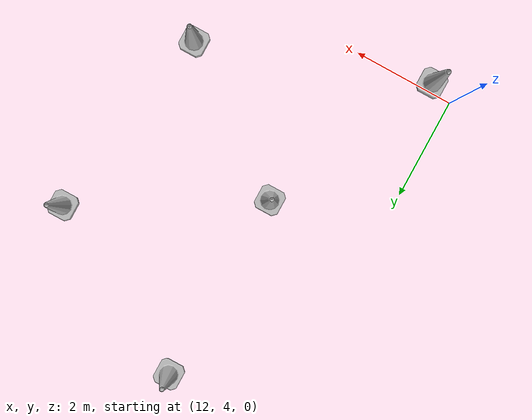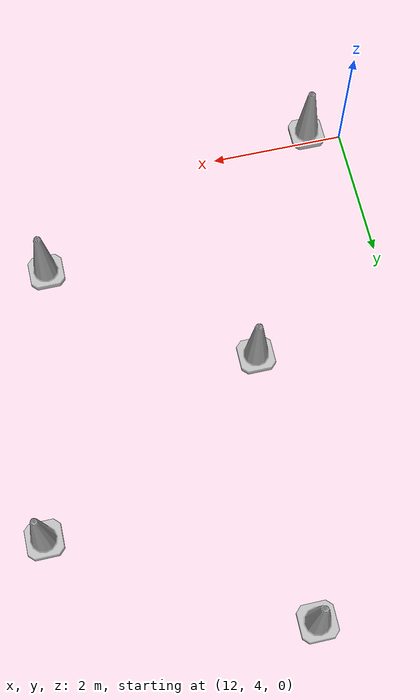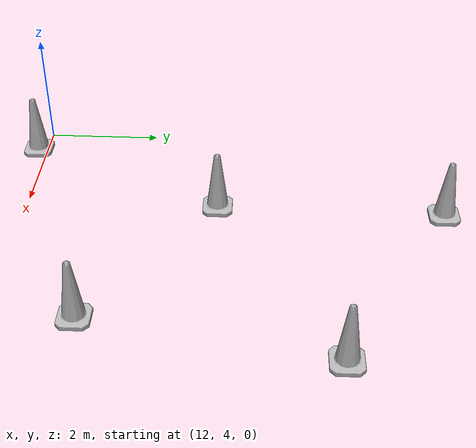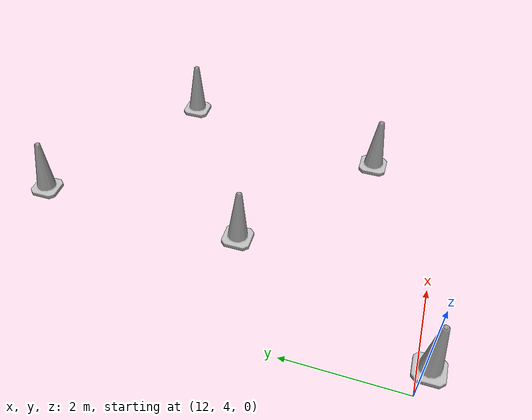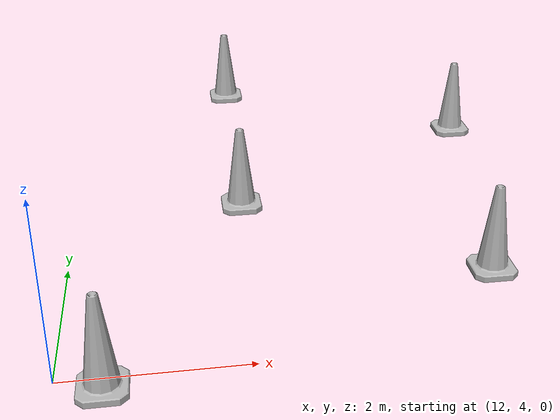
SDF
<sdf version="1.6">
 <model name="RaceTrack1">
  <link name="link_clone_20">
   <inertial>
    <inertia><ixx>1</ixx><ixy>0</ixy><ixz>0</ixz><iyy>1</iyy><iyz>0</iyz><izz>1</izz></inertia>
    <mass>1</mass>
   </inertial>
   <pose>14.2254 11.1301 -6e-06 0 1e-06 0</pose>
   <visual name="visual">
    <geometry>
     <mesh><scale>10 10 10</scale><uri>model://construction_cone/meshes/construction_cone.dae</uri></mesh>
    </geometry>
    <material><shader type="vertex"><normal_map>__default__</normal_map></shader></material>
   </visual>
   <collision name="collision">
    <geometry>
     <mesh><uri>model://construction_cone/meshes/construction_cone.dae</uri><scale>10 10 10</scale></mesh>
    </geometry>
    <surface>
     <friction>
      <ode><mu>1</mu><mu2>1</mu2><fdir1>0 0 0</fdir1><slip1>0</slip1><slip2>0</slip2></ode>
      <torsional>
       <coefficient>1</coefficient>
       <patch_radius>0</patch_radius>
       <surface_radius>0</surface_radius>
       <use_patch_radius>1</use_patch_radius>
       <ode><slip>0</slip></ode>
      </torsional>
     </friction>
     <bounce><restitution_coefficient>0</restitution_coefficient><threshold>1e+06</threshold></bounce>
     <contact>
      <collide_without_contact>0</collide_without_contact>
      <collide_without_contact_bitmask>1</collide_without_contact_bitmask>
      <collide_bitmask>1</collide_bitmask>
      <ode>
       <soft_cfm>0</soft_cfm>
       <soft_erp>0.2</soft_erp>
       <kp>1e+13</kp>
       <kd>1</kd>
       <max_vel>0.01</max_vel>
       <min_depth>0</min_depth>
      </ode>
      <bullet>
       <split_impulse>1</split_impulse>
       <split_impulse_penetration_threshold>-0.01</split_impulse_penetration_threshold>
       <soft_cfm>0</soft_cfm>
       <soft_erp>0.2</soft_erp>
       <kp>1e+13</kp>
       <kd>1</kd>
      </bullet>
     </contact>
    </surface>
   </collision>
  </link>
  <link name="link_clone_22">
   <inertial>
    <inertia><ixx>1</ixx><ixy>0</ixy><ixz>0</ixz><iyy>1</iyy><iyz>0</iyz><izz>1</izz></inertia>
    <mass>1</mass>
   </inertial>
   <pose>14.1306 7.28756 -7e-06 0 1e-06 0</pose>
   <visual name="visual">
    <geometry>
     <mesh><scale>10 10 10</scale><uri>model://construction_cone/meshes/construction_cone.dae</uri></mesh>
    </geometry>
    <material><shader type="vertex"><normal_map>__default__</normal_map></shader></material>
   </visual>
   <collision name="collision">
    <geometry>
     <mesh><uri>model://construction_cone/meshes/construction_cone.dae</uri><scale>10 10 10</scale></mesh>
    </geometry>
    <surface>
     <friction>
      <ode><mu>1</mu><mu2>1</mu2><fdir1>0 0 0</fdir1><slip1>0</slip1><slip2>0</slip2></ode>
      <torsional>
       <coefficient>1</coefficient>
       <patch_radius>0</patch_radius>
       <surface_radius>0</surface_radius>
       <use_patch_radius>1</use_patch_radius>
       <ode><slip>0</slip></ode>
      </torsional>
     </friction>
     <bounce><restitution_coefficient>0</restitution_coefficient><threshold>1e+06</threshold></bounce>
     <contact>
      <collide_without_contact>0</collide_without_contact>
      <collide_without_contact_bitmask>1</collide_without_contact_bitmask>
      <collide_bitmask>1</collide_bitmask>
      <ode>
       <soft_cfm>0</soft_cfm>
       <soft_erp>0.2</soft_erp>
       <kp>1e+13</kp>
       <kd>1</kd>
       <max_vel>0.01</max_vel>
       <min_depth>0</min_depth>
      </ode>
      <bullet>
       <split_impulse>1</split_impulse>
       <split_impulse_penetration_threshold>-0.01</split_impulse_penetration_threshold>
       <soft_cfm>0</soft_cfm>
       <soft_erp>0.2</soft_erp>
       <kp>1e+13</kp>
       <kd>1</kd>
      </bullet>
     </contact>
    </surface>
   </collision>
  </link>
  <link name="link_clone_23">
   <inertial>
    <inertia><ixx>1</ixx><ixy>0</ixy><ixz>0</ixz><iyy>1</iyy><iyz>0</iyz><izz>1</izz></inertia>
    <mass>1</mass>
   </inertial>
   <pose>17.5518 9.26991 -8e-06 0 1e-06 0</pose>
   <visual name="visual">
    <geometry>
     <mesh><scale>10 10 10</scale><uri>model://construction_cone/meshes/construction_cone.dae</uri></mesh>
    </geometry>
    <material><shader type="vertex"><normal_map>__default__</normal_map></shader></material>
   </visual>
   <collision name="collision">
    <geometry>
     <mesh><uri>model://construction_cone/meshes/construction_cone.dae</uri><scale>10 10 10</scale></mesh>
    </geometry>
    <surface>
     <friction>
      <ode><mu>1</mu><mu2>1</mu2><fdir1>0 0 0</fdir1><slip1>0</slip1><slip2>0</slip2></ode>
      <torsional>
       <coefficient>1</coefficient>
       <patch_radius>0</patch_radius>
       <surface_radius>0</surface_radius>
       <use_patch_radius>1</use_patch_radius>
       <ode><slip>0</slip></ode>
      </torsional>
     </friction>
     <bounce><restitution_coefficient>0</restitution_coefficient><threshold>1e+06</threshold></bounce>
     <contact>
      <collide_without_contact>0</collide_without_contact>
      <collide_without_contact_bitmask>1</collide_without_contact_bitmask>
      <collide_bitmask>1</collide_bitmask>
      <ode>
       <soft_cfm>0</soft_cfm>
       <soft_erp>0.2</soft_erp>
       <kp>1e+13</kp>
       <kd>1</kd>
       <max_vel>0.01</max_vel>
       <min_depth>0</min_depth>
      </ode>
      <bullet>
       <split_impulse>1</split_impulse>
       <split_impulse_penetration_threshold>-0.01</split_impulse_penetration_threshold>
       <soft_cfm>0</soft_cfm>
       <soft_erp>0.2</soft_erp>
       <kp>1e+13</kp>
       <kd>1</kd>
      </bullet>
     </contact>
    </surface>
   </collision>
  </link>
  <link name="link_clone_24">
   <inertial>
    <inertia><ixx>1</ixx><ixy>0</ixy><ixz>0</ixz><iyy>1</iyy><iyz>0</iyz><izz>1</izz></inertia>
    <mass>1</mass>
   </inertial>
   <pose>16.854 5.31983 -9e-06 0 1e-06 0</pose>
   <visual name="visual">
    <geometry>
     <mesh><scale>10 10 10</scale><uri>model://construction_cone/meshes/construction_cone.dae</uri></mesh>
    </geometry>
    <material><shader type="vertex"><normal_map>__default__</normal_map></shader></material>
   </visual>
   <collision name="collision">
    <geometry>
     <mesh><uri>model://construction_cone/meshes/construction_cone.dae</uri><scale>10 10 10</scale></mesh>
    </geometry>
    <surface>
     <friction>
      <ode><mu>1</mu><mu2>1</mu2><fdir1>0 0 0</fdir1><slip1>0</slip1><slip2>0</slip2></ode>
      <torsional>
       <coefficient>1</coefficient>
       <patch_radius>0</patch_radius>
       <surface_radius>0</surface_radius>
       <use_patch_radius>1</use_patch_radius>
       <ode><slip>0</slip></ode>
      </torsional>
     </friction>
     <bounce><restitution_coefficient>0</restitution_coefficient><threshold>1e+06</threshold></bounce>
     <contact>
      <collide_without_contact>0</collide_without_contact>
      <collide_without_contact_bitmask>1</collide_without_contact_bitmask>
      <collide_bitmask>1</collide_bitmask>
      <ode>
       <soft_cfm>0</soft_cfm>
       <soft_erp>0.2</soft_erp>
       <kp>1e+13</kp>
       <kd>1</kd>
       <max_vel>0.01</max_vel>
       <min_depth>0</min_depth>
      </ode>
      <bullet>
       <split_impulse>1</split_impulse>
       <split_impulse_penetration_threshold>-0.01</split_impulse_penetration_threshold>
       <soft_cfm>0</soft_cfm>
       <soft_erp>0.2</soft_erp>
       <kp>1e+13</kp>
       <kd>1</kd>
      </bullet>
     </contact>
    </surface>
   </collision>
  </link>
  <link name="link_clone_25">
   <inertial>
    <inertia><ixx>1</ixx><ixy>0</ixy><ixz>0</ixz><iyy>1</iyy><iyz>0</iyz><izz>1</izz></inertia>
    <mass>1</mass>
   </inertial>
   <pose>12.4862 3.83398 -6e-06 0 1e-06 0</pose>
   <visual name="visual">
    <geometry>
     <mesh><scale>10 10 10</scale><uri>model://construction_cone/meshes/construction_cone.dae</uri></mesh>
    </geometry>
    <material><shader type="vertex"><normal_map>__default__</normal_map></shader></material>
   </visual>
   <collision name="collision">
    <geometry>
     <mesh><uri>model://construction_cone/meshes/construction_cone.dae</uri><scale>10 10 10</scale></mesh>
    </geometry>
    <surface>
     <friction>
      <ode><mu>1</mu><mu2>1</mu2><fdir1>0 0 0</fdir1><slip1>0</slip1><slip2>0</slip2></ode>
      <torsional>
       <coefficient>1</coefficient>
       <patch_radius>0</patch_radius>
       <surface_radius>0</surface_radius>
       <use_patch_radius>1</use_patch_radius>
       <ode><slip>0</slip></ode>
      </torsional>
     </friction>
     <bounce><restitution_coefficient>0</restitution_coefficient><threshold>1e+06</threshold></bounce>
     <contact>
      <collide_without_contact>0</collide_without_contact>
      <collide_without_contact_bitmask>1</collide_without_contact_bitmask>
      <collide_bitmask>1</collide_bitmask>
      <ode>
       <soft_cfm>0</soft_cfm>
       <soft_erp>0.2</soft_erp>
       <kp>1e+13</kp>
       <kd>1</kd>
       <max_vel>0.01</max_vel>
       <min_depth>0</min_depth>
      </ode>
      <bullet>
       <split_impulse>1</split_impulse>
       <split_impulse_penetration_threshold>-0.01</split_impulse_penetration_threshold>
       <soft_cfm>0</soft_cfm>
       <soft_erp>0.2</soft_erp>
       <kp>1e+13</kp>
       <kd>1</kd>
      </bullet>
     </contact>
    </surface>
   </collision>
  </link>
  <static>1</static>
 </model>
</sdf>
